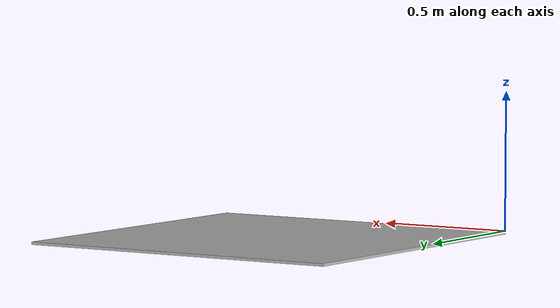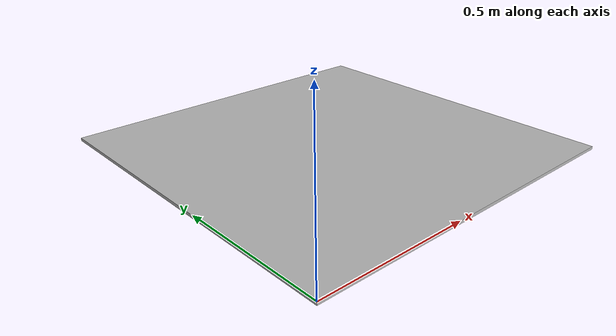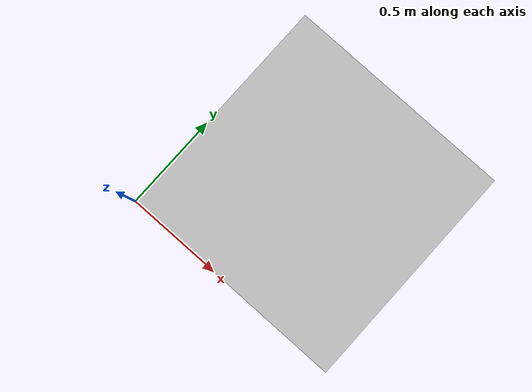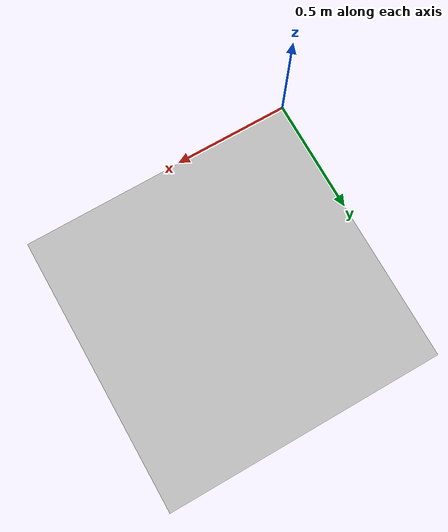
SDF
<?xml version="1.0" ?>
<sdf version="1.5">
  <model name="Plate120">
        <static>true</static>
    <link name="link">
    <gravity>0</gravity>
      <collision name="collision">
        <geometry>
          <mesh>
            <scale>1 1 1</scale>
            <uri>model://plate_120/meshes/plate120.dae</uri>
          </mesh>
        </geometry>
      </collision>
      <visual name="visual">
        <geometry>
          <mesh>
            <scale>1 1 1</scale>
            <uri>model://plate_120/meshes/plate120.dae</uri>
          </mesh>
        </geometry>
      </visual>
    </link>
  </model>
</sdf>
